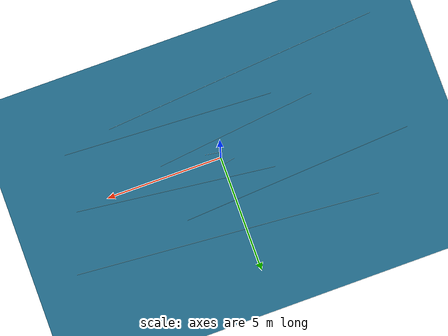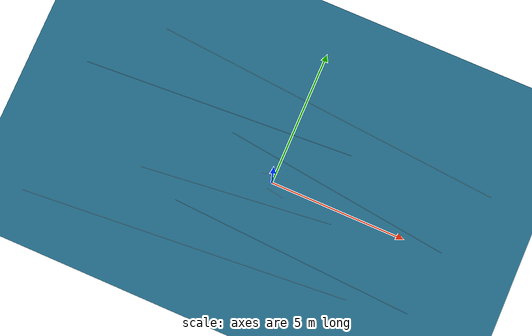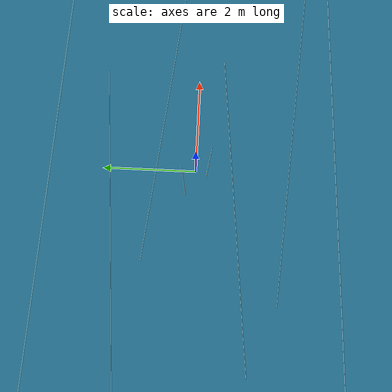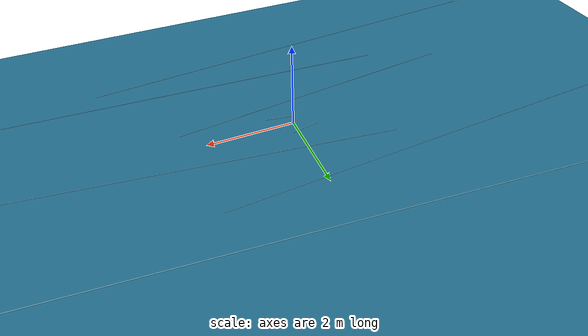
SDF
<?xml version="1.0"?>
<sdf version="1.9">
  <world name="atawi_3a3_ocean_world">
    <gravity>0 0 -9.81</gravity>

    <gui fullscreen="0">
      <plugin filename="MinimalScene" name="3D View">
        <gz-gui>
          <title>3D View</title>
          <property type="bool" key="showTitleBar">false</property>
          <property type="string" key="state">docked</property>
        </gz-gui>
        <engine>ogre2</engine>
        <scene>scene</scene>
        <ambient_light>0.5 0.5 0.5</ambient_light>
        <background_color>0.62 0.78 0.92</background_color>
        <camera_pose>-9 -7 5 0 0.34 0.66</camera_pose>
      </plugin>
      <plugin filename="GzSceneManager" name="Scene Manager"/>
      <plugin filename="InteractiveViewControl" name="Interactive view control"/>
      <plugin filename="CameraTracking" name="Camera Tracking"/>
      <plugin filename="MarkerManager" name="Marker Manager"/>
      <plugin filename="SelectEntities" name="Select Entities"/>
      <plugin filename="VisualizationCapabilities" name="Visualization Capabilities"/>
      <plugin filename="Spawn" name="Spawn"/>
      <plugin filename="WorldControl" name="World control">
        <gz-gui>
          <title>World control</title>
          <property type="bool" key="showTitleBar">false</property>
          <property type="bool" key="resizable">false</property>
          <property type="double" key="height">72</property>
          <property type="string" key="state">floating</property>
          <anchors target="3D View">
            <line own="left" target="left"/>
            <line own="bottom" target="bottom"/>
          </anchors>
        </gz-gui>
        <play_pause>true</play_pause>
        <step>true</step>
        <start_paused>false</start_paused>
      </plugin>
      <plugin filename="WorldStats" name="World stats">
        <gz-gui>
          <title>World stats</title>
          <property type="bool" key="showTitleBar">false</property>
          <property type="bool" key="resizable">false</property>
          <property type="double" key="height">110</property>
          <property type="double" key="width">290</property>
          <property type="string" key="state">floating</property>
          <anchors target="3D View">
            <line own="right" target="right"/>
            <line own="bottom" target="bottom"/>
          </anchors>
        </gz-gui>
        <sim_time>true</sim_time>
        <real_time>true</real_time>
        <real_time_factor>true</real_time_factor>
        <iterations>true</iterations>
      </plugin>
      <plugin filename="EntityTree" name="Entity tree"/>
      <plugin filename="EntityContextMenuPlugin" name="Entity Context Menu"/>
      <plugin filename="ComponentInspector" name="Component inspector"/>
      <plugin filename="TransformControl" name="Transform control"/>
      <plugin filename="Shapes" name="Shapes"/>
      <plugin filename="Lights" name="Lights"/>
      <plugin filename="CopyPaste" name="Copy/Paste"/>
      <plugin filename="Screenshot" name="Screenshot"/>
    </gui>

    <!-- ======================== SYSTEM PLUGINS (Gazebo Harmonic) ======================== -->
    <!-- Obligatoires : sans eux la simulation ne tourne pas et les modeles ne sont
         pas diffuses (spawn / controller_manager indisponibles en headless/Docker). -->
    <plugin filename="gz-sim-physics-system"
            name="gz::sim::systems::Physics"/>
    <plugin filename="gz-sim-user-commands-system"
            name="gz::sim::systems::UserCommands"/>
    <plugin filename="gz-sim-scene-broadcaster-system"
            name="gz::sim::systems::SceneBroadcaster"/>

    <!-- Pas de plugin Buoyancy : le bateau est FIXE au monde (URDF: world_to_hull),
         pose a plat sur l'eau et immobile. La surface d'eau reste purement visuelle. -->

    <!-- ======================== PHYSICS ======================== -->
    <!-- Le moteur (dartsim par defaut) est choisi par le plugin Physics ci-dessus. -->
    <physics name="default_physics" type="ode">
      <max_step_size>0.001</max_step_size>
      <real_time_factor>1.0</real_time_factor>
      <real_time_update_rate>1000</real_time_update_rate>
    </physics>

    <!-- ======================== SCENE / SKY ======================== -->
    <scene>
      <ambient>0.55 0.65 0.75 1</ambient>
      <background>0.62 0.78 0.92 1</background>
      <shadows>true</shadows>
      <grid>false</grid>
    </scene>

    <!-- ======================== LIGHTING ======================== -->
    <light type="directional" name="sun">
      <cast_shadows>true</cast_shadows>
      <pose>0 0 10 0 0 0</pose>
      <diffuse>1.0 0.95 0.82 1</diffuse>
      <specular>0.55 0.55 0.50 1</specular>
      <direction>-0.35 0.20 -0.92</direction>
      <attenuation>
        <range>1000</range>
        <constant>0.9</constant>
        <linear>0.01</linear>
        <quadratic>0.001</quadratic>
      </attenuation>
    </light>

    <!-- ======================== WATER SURFACE ======================== -->
    <!-- Plan d'eau purement visuel. La pose du bateau est fixee dans l'URDF. -->
    <model name="water_surface">
      <static>true</static>
      <pose>0 0 0 0 0 0</pose>
      <link name="water_link">
        <!-- Pas de collision : la surface reste uniquement visuelle. -->
        <visual name="water_visual">
          <geometry>
            <plane>
              <normal>0 0 1</normal>
              <size>60 60</size>
            </plane>
          </geometry>
          <!-- Eau calme et MATE : specular tres faible => plus de halo/reflet aveuglant
               ni de "bloc" brillant. Plan reduit a 60 m pour degager un horizon. -->
          <material>
            <ambient>0.10 0.28 0.34 1</ambient>
            <diffuse>0.12 0.40 0.52 1</diffuse>
            <specular>0.06 0.10 0.12 1</specular>
            <emissive>0 0 0 1</emissive>
          </material>
        </visual>
      </link>
    </model>

    <!-- ======================== SUBTLE WAVE MARKERS ======================== -->
    <!-- Crêtes visuelles fines, sans collision ni physique. Elles donnent une
         lecture maritime sans perturber la simulation ROS/Gazebo. -->
    <model name="wave_lines">
      <static>true</static>
      <pose>0 0 0.003 0 0 0</pose>
      <link name="wave_link">
        <visual name="wave_line_1">
          <pose>-2.0 -3.2 0 0 0 0.08</pose>
          <geometry><box><size>12.0 0.020 0.002</size></box></geometry>
          <material>
            <ambient>0.72 0.95 1.00 0.55</ambient>
            <diffuse>0.72 0.95 1.00 0.55</diffuse>
          </material>
        </visual>
        <visual name="wave_line_2">
          <pose>1.6 -2.1 0 0 0 -0.05</pose>
          <geometry><box><size>9.0 0.018 0.002</size></box></geometry>
          <material>
            <ambient>0.70 0.93 0.98 0.45</ambient>
            <diffuse>0.70 0.93 0.98 0.45</diffuse>
          </material>
        </visual>
        <visual name="wave_line_3">
          <pose>-1.0 -0.9 0 0 0 0.11</pose>
          <geometry><box><size>7.0 0.016 0.002</size></box></geometry>
          <material>
            <ambient>0.78 0.98 1.00 0.50</ambient>
            <diffuse>0.78 0.98 1.00 0.50</diffuse>
          </material>
        </visual>
        <visual name="wave_line_4">
          <pose>2.2 0.6 0 0 0 -0.12</pose>
          <geometry><box><size>8.5 0.018 0.002</size></box></geometry>
          <material>
            <ambient>0.72 0.95 1.00 0.48</ambient>
            <diffuse>0.72 0.95 1.00 0.48</diffuse>
          </material>
        </visual>
        <visual name="wave_line_5">
          <pose>-2.8 1.7 0 0 0 0.06</pose>
          <geometry><box><size>10.0 0.018 0.002</size></box></geometry>
          <material>
            <ambient>0.66 0.90 0.96 0.42</ambient>
            <diffuse>0.66 0.90 0.96 0.42</diffuse>
          </material>
        </visual>
        <visual name="wave_line_6">
          <pose>0.8 3.1 0 0 0 -0.08</pose>
          <geometry><box><size>13.0 0.020 0.002</size></box></geometry>
          <material>
            <ambient>0.76 0.97 1.00 0.52</ambient>
            <diffuse>0.76 0.97 1.00 0.52</diffuse>
          </material>
        </visual>
        <visual name="near_ripple_left">
          <pose>-0.20 0.26 0.001 0 0 0.18</pose>
          <geometry><box><size>0.65 0.012 0.002</size></box></geometry>
          <material>
            <ambient>0.90 1.00 1.00 0.70</ambient>
            <diffuse>0.90 1.00 1.00 0.70</diffuse>
          </material>
        </visual>
        <visual name="near_ripple_right">
          <pose>0.22 -0.28 0.001 0 0 -0.16</pose>
          <geometry><box><size>0.70 0.012 0.002</size></box></geometry>
          <material>
            <ambient>0.90 1.00 1.00 0.70</ambient>
            <diffuse>0.90 1.00 1.00 0.70</diffuse>
          </material>
        </visual>
      </link>
    </model>

  </world>
</sdf>
